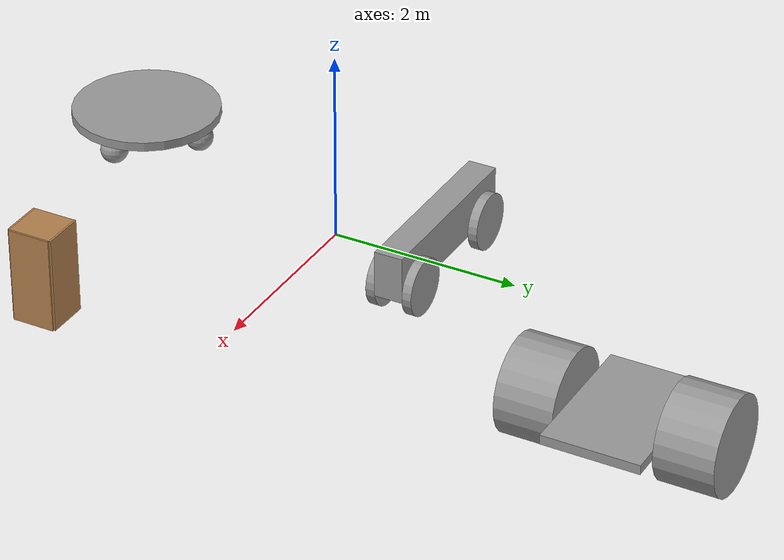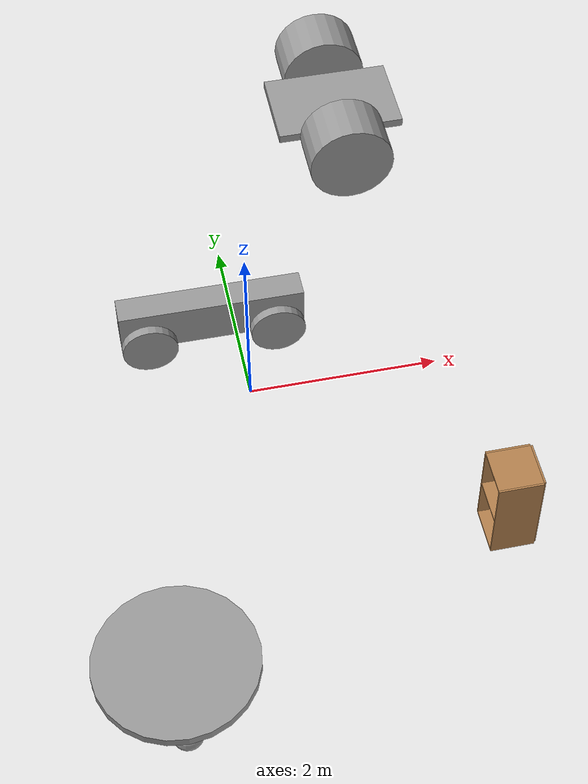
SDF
<?xml version='1.0'?>
<sdf version='1.6'>
  <model name='mymodel'>
    <link name='link_10'>
      <pose frame=''>-0.5984 -3 -0.142857 0 -0 0</pose>
      <inertial>
        <mass>1</mass>
        <inertia>
          <ixx>0.1</ixx>
          <ixy>0</ixy>
          <ixz>0</ixz>
          <iyy>0.1</iyy>
          <iyz>0</iyz>
          <izz>0.1</izz>
        </inertia>
        <pose frame=''>0 0 0 0 -0 0</pose>
      </inertial>
      <gravity>1</gravity>
      <self_collide>0</self_collide>
      <kinematic>0</kinematic>
      <visual name='visual'>
        <pose frame=''>0 0 0 0 -0 0</pose>
        <geometry>
          <sphere>
            <radius>0.15</radius>
          </sphere>
        </geometry>
        <material>
          <lighting>1</lighting>
          <script>
            <uri>file://media/materials/scripts/gazebo.material</uri>
            <name>Gazebo/Grey</name>
          </script>
          <ambient>0.3 0.3 0.3 1</ambient>
          <diffuse>0.7 0.7 0.7 1</diffuse>
          <specular>0.01 0.01 0.01 1</specular>
          <emissive>0 0 0 1</emissive>
          <shader type='vertex'>
            <normal_map>__default__</normal_map>
          </shader>
        </material>
        <cast_shadows>1</cast_shadows>
        <transparency>0</transparency>
      </visual>
      <collision name='collision'>
        <laser_retro>0</laser_retro>
        <max_contacts>10</max_contacts>
        <pose frame=''>0 0 0 0 -0 0</pose>
        <geometry>
          <sphere>
            <radius>0.15</radius>
          </sphere>
        </geometry>
        <surface>
          <friction>
            <ode>
              <mu>1</mu>
              <mu2>1</mu2>
              <fdir1>0 0 0</fdir1>
              <slip1>0</slip1>
              <slip2>0</slip2>
            </ode>
            <torsional>
              <coefficient>1</coefficient>
              <patch_radius>0</patch_radius>
              <surface_radius>0</surface_radius>
              <use_patch_radius>1</use_patch_radius>
              <ode>
                <slip>0</slip>
              </ode>
            </torsional>
          </friction>
          <bounce>
            <restitution_coefficient>0</restitution_coefficient>
            <threshold>1e+06</threshold>
          </bounce>
          <contact>
            <collide_without_contact>0</collide_without_contact>
            <collide_without_contact_bitmask>1</collide_without_contact_bitmask>
            <collide_bitmask>1</collide_bitmask>
            <ode>
              <soft_cfm>0</soft_cfm>
              <soft_erp>0.2</soft_erp>
              <kp>1e+13</kp>
              <kd>1</kd>
              <max_vel>0.01</max_vel>
              <min_depth>0</min_depth>
            </ode>
            <bullet>
              <split_impulse>1</split_impulse>
              <split_impulse_penetration_threshold>-0.01</split_impulse_penetration_threshold>
              <soft_cfm>0</soft_cfm>
              <soft_erp>0.2</soft_erp>
              <kp>1e+13</kp>
              <kd>1</kd>
            </bullet>
          </contact>
        </surface>
      </collision>
    </link>
    <link name='link_10_clone'>
      <pose frame=''>-1.8984 -3 -0.142857 0 -0 0</pose>
      <inertial>
        <mass>1</mass>
        <inertia>
          <ixx>0.1</ixx>
          <ixy>0</ixy>
          <ixz>0</ixz>
          <iyy>0.1</iyy>
          <iyz>0</iyz>
          <izz>0.1</izz>
        </inertia>
        <pose frame=''>0 0 0 0 -0 0</pose>
      </inertial>
      <self_collide>0</self_collide>
      <kinematic>0</kinematic>
      <visual name='visual'>
        <pose frame=''>0 0 0 0 -0 0</pose>
        <geometry>
          <sphere>
            <radius>0.15</radius>
          </sphere>
        </geometry>
        <material>
          <lighting>1</lighting>
          <script>
            <uri>file://media/materials/scripts/gazebo.material</uri>
            <name>Gazebo/Grey</name>
          </script>
          <ambient>0.3 0.3 0.3 1</ambient>
          <diffuse>0.7 0.7 0.7 1</diffuse>
          <specular>0.01 0.01 0.01 1</specular>
          <emissive>0 0 0 1</emissive>
          <shader type='vertex'>
            <normal_map>__default__</normal_map>
          </shader>
        </material>
        <cast_shadows>1</cast_shadows>
        <transparency>0</transparency>
      </visual>
      <collision name='collision'>
        <laser_retro>0</laser_retro>
        <max_contacts>10</max_contacts>
        <pose frame=''>0 0 0 0 -0 0</pose>
        <geometry>
          <sphere>
            <radius>0.15</radius>
          </sphere>
        </geometry>
        <surface>
          <friction>
            <ode>
              <mu>1</mu>
              <mu2>1</mu2>
              <fdir1>0 0 0</fdir1>
              <slip1>0</slip1>
              <slip2>0</slip2>
            </ode>
            <torsional>
              <coefficient>1</coefficient>
              <patch_radius>0</patch_radius>
              <surface_radius>0</surface_radius>
              <use_patch_radius>1</use_patch_radius>
              <ode>
                <slip>0</slip>
              </ode>
            </torsional>
          </friction>
          <bounce>
            <restitution_coefficient>0</restitution_coefficient>
            <threshold>1e+06</threshold>
          </bounce>
          <contact>
            <collide_without_contact>0</collide_without_contact>
            <collide_without_contact_bitmask>1</collide_without_contact_bitmask>
            <collide_bitmask>1</collide_bitmask>
            <ode>
              <soft_cfm>0</soft_cfm>
              <soft_erp>0.2</soft_erp>
              <kp>1e+13</kp>
              <kd>1</kd>
              <max_vel>0.01</max_vel>
              <min_depth>0</min_depth>
            </ode>
            <bullet>
              <split_impulse>1</split_impulse>
              <split_impulse_penetration_threshold>-0.01</split_impulse_penetration_threshold>
              <soft_cfm>0</soft_cfm>
              <soft_erp>0.2</soft_erp>
              <kp>1e+13</kp>
              <kd>1</kd>
            </bullet>
          </contact>
        </surface>
      </collision>
    </link>
    <link name='link_10_clone_clone'>
      <pose frame=''>-1.2484 -2.35 -0.142857 0 -0 0</pose>
      <inertial>
        <mass>1</mass>
        <inertia>
          <ixx>0.1</ixx>
          <ixy>0</ixy>
          <ixz>0</ixz>
          <iyy>0.1</iyy>
          <iyz>0</iyz>
          <izz>0.1</izz>
        </inertia>
        <pose frame=''>0 0 0 0 -0 0</pose>
      </inertial>
      <self_collide>0</self_collide>
      <kinematic>0</kinematic>
      <visual name='visual'>
        <pose frame=''>0 0 0 0 -0 0</pose>
        <geometry>
          <sphere>
            <radius>0.15</radius>
          </sphere>
        </geometry>
        <material>
          <lighting>1</lighting>
          <script>
            <uri>file://media/materials/scripts/gazebo.material</uri>
            <name>Gazebo/Grey</name>
          </script>
          <ambient>0.3 0.3 0.3 1</ambient>
          <diffuse>0.7 0.7 0.7 1</diffuse>
          <specular>0.01 0.01 0.01 1</specular>
          <emissive>0 0 0 1</emissive>
          <shader type='vertex'>
            <normal_map>__default__</normal_map>
          </shader>
        </material>
        <cast_shadows>1</cast_shadows>
        <transparency>0</transparency>
      </visual>
      <collision name='collision'>
        <laser_retro>0</laser_retro>
        <max_contacts>10</max_contacts>
        <pose frame=''>0 0 0 0 -0 0</pose>
        <geometry>
          <sphere>
            <radius>0.15</radius>
          </sphere>
        </geometry>
        <surface>
          <friction>
            <ode>
              <mu>1</mu>
              <mu2>1</mu2>
              <fdir1>0 0 0</fdir1>
              <slip1>0</slip1>
              <slip2>0</slip2>
            </ode>
            <torsional>
              <coefficient>1</coefficient>
              <patch_radius>0</patch_radius>
              <surface_radius>0</surface_radius>
              <use_patch_radius>1</use_patch_radius>
              <ode>
                <slip>0</slip>
              </ode>
            </torsional>
          </friction>
          <bounce>
            <restitution_coefficient>0</restitution_coefficient>
            <threshold>1e+06</threshold>
          </bounce>
          <contact>
            <collide_without_contact>0</collide_without_contact>
            <collide_without_contact_bitmask>1</collide_without_contact_bitmask>
            <collide_bitmask>1</collide_bitmask>
            <ode>
              <soft_cfm>0</soft_cfm>
              <soft_erp>0.2</soft_erp>
              <kp>1e+13</kp>
              <kd>1</kd>
              <max_vel>0.01</max_vel>
              <min_depth>0</min_depth>
            </ode>
            <bullet>
              <split_impulse>1</split_impulse>
              <split_impulse_penetration_threshold>-0.01</split_impulse_penetration_threshold>
              <soft_cfm>0</soft_cfm>
              <soft_erp>0.2</soft_erp>
              <kp>1e+13</kp>
              <kd>1</kd>
            </bullet>
          </contact>
        </surface>
      </collision>
    </link>
    <link name='link_10_clone_clone_0'>
      <pose frame=''>-1.2484 -3.65 -0.142857 0 -0 0</pose>
      <inertial>
        <mass>1</mass>
        <inertia>
          <ixx>0.1</ixx>
          <ixy>0</ixy>
          <ixz>0</ixz>
          <iyy>0.1</iyy>
          <iyz>0</iyz>
          <izz>0.1</izz>
        </inertia>
        <pose frame=''>0 0 0 0 -0 0</pose>
      </inertial>
      <self_collide>0</self_collide>
      <kinematic>0</kinematic>
      <visual name='visual'>
        <pose frame=''>0 0 0 0 -0 0</pose>
        <geometry>
          <sphere>
            <radius>0.15</radius>
          </sphere>
        </geometry>
        <material>
          <lighting>1</lighting>
          <script>
            <uri>file://media/materials/scripts/gazebo.material</uri>
            <name>Gazebo/Grey</name>
          </script>
          <ambient>0.3 0.3 0.3 1</ambient>
          <diffuse>0.7 0.7 0.7 1</diffuse>
          <specular>0.01 0.01 0.01 1</specular>
          <emissive>0 0 0 1</emissive>
          <shader type='vertex'>
            <normal_map>__default__</normal_map>
          </shader>
        </material>
        <cast_shadows>1</cast_shadows>
        <transparency>0</transparency>
      </visual>
      <collision name='collision'>
        <laser_retro>0</laser_retro>
        <max_contacts>10</max_contacts>
        <pose frame=''>0 0 0 0 -0 0</pose>
        <geometry>
          <sphere>
            <radius>0.15</radius>
          </sphere>
        </geometry>
        <surface>
          <friction>
            <ode>
              <mu>1</mu>
              <mu2>1</mu2>
              <fdir1>0 0 0</fdir1>
              <slip1>0</slip1>
              <slip2>0</slip2>
            </ode>
            <torsional>
              <coefficient>1</coefficient>
              <patch_radius>0</patch_radius>
              <surface_radius>0</surface_radius>
              <use_patch_radius>1</use_patch_radius>
              <ode>
                <slip>0</slip>
              </ode>
            </torsional>
          </friction>
          <bounce>
            <restitution_coefficient>0</restitution_coefficient>
            <threshold>1e+06</threshold>
          </bounce>
          <contact>
            <collide_without_contact>0</collide_without_contact>
            <collide_without_contact_bitmask>1</collide_without_contact_bitmask>
            <collide_bitmask>1</collide_bitmask>
            <ode>
              <soft_cfm>0</soft_cfm>
              <soft_erp>0.2</soft_erp>
              <kp>1e+13</kp>
              <kd>1</kd>
              <max_vel>0.01</max_vel>
              <min_depth>0</min_depth>
            </ode>
            <bullet>
              <split_impulse>1</split_impulse>
              <split_impulse_penetration_threshold>-0.01</split_impulse_penetration_threshold>
              <soft_cfm>0</soft_cfm>
              <soft_erp>0.2</soft_erp>
              <kp>1e+13</kp>
              <kd>1</kd>
            </bullet>
          </contact>
        </surface>
      </collision>
    </link>
    <link name='link_12'>
      <pose frame=''>1.7516 4 0.207143 0 -0 0</pose>
      <inertial>
        <mass>1</mass>
        <inertia>
          <ixx>0.166667</ixx>
          <ixy>0</ixy>
          <ixz>0</ixz>
          <iyy>0.166667</iyy>
          <iyz>0</iyz>
          <izz>0.166667</izz>
        </inertia>
        <pose frame=''>0 0 0 0 -0 0</pose>
      </inertial>
      <gravity>1</gravity>
      <self_collide>0</self_collide>
      <kinematic>0</kinematic>
      <visual name='visual'>
        <pose frame=''>0 0 0 0 -0 0</pose>
        <geometry>
          <box>
            <size>1.5 1 0.1</size>
          </box>
        </geometry>
        <material>
          <lighting>1</lighting>
          <script>
            <uri>file://media/materials/scripts/gazebo.material</uri>
            <name>Gazebo/Grey</name>
          </script>
          <ambient>0.3 0.3 0.3 1</ambient>
          <diffuse>0.7 0.7 0.7 1</diffuse>
          <specular>0.01 0.01 0.01 1</specular>
          <emissive>0 0 0 1</emissive>
          <shader type='vertex'>
            <normal_map>__default__</normal_map>
          </shader>
        </material>
        <cast_shadows>1</cast_shadows>
        <transparency>0</transparency>
      </visual>
      <collision name='collision'>
        <laser_retro>0</laser_retro>
        <max_contacts>10</max_contacts>
        <pose frame=''>0 0 0 0 -0 0</pose>
        <geometry>
          <box>
            <size>1.5 1 0.1</size>
          </box>
        </geometry>
        <surface>
          <friction>
            <ode>
              <mu>1</mu>
              <mu2>1</mu2>
              <fdir1>0 0 0</fdir1>
              <slip1>0</slip1>
              <slip2>0</slip2>
            </ode>
            <torsional>
              <coefficient>1</coefficient>
              <patch_radius>0</patch_radius>
              <surface_radius>0</surface_radius>
              <use_patch_radius>1</use_patch_radius>
              <ode>
                <slip>0</slip>
              </ode>
            </torsional>
          </friction>
          <bounce>
            <restitution_coefficient>0</restitution_coefficient>
            <threshold>1e+06</threshold>
          </bounce>
          <contact>
            <collide_without_contact>0</collide_without_contact>
            <collide_without_contact_bitmask>1</collide_without_contact_bitmask>
            <collide_bitmask>1</collide_bitmask>
            <ode>
              <soft_cfm>0</soft_cfm>
              <soft_erp>0.2</soft_erp>
              <kp>1e+13</kp>
              <kd>1</kd>
              <max_vel>0.01</max_vel>
              <min_depth>0</min_depth>
            </ode>
            <bullet>
              <split_impulse>1</split_impulse>
              <split_impulse_penetration_threshold>-0.01</split_impulse_penetration_threshold>
              <soft_cfm>0</soft_cfm>
              <soft_erp>0.2</soft_erp>
              <kp>1e+13</kp>
              <kd>1</kd>
            </bullet>
          </contact>
        </surface>
      </collision>
    </link>
    <link name='link_13'>
      <pose frame=''>1.7516 4.80005 0.207143 1.5707 -0 0</pose>
      <inertial>
        <mass>1</mass>
        <inertia>
          <ixx>0.145833</ixx>
          <ixy>0</ixy>
          <ixz>0</ixz>
          <iyy>0.145833</iyy>
          <iyz>0</iyz>
          <izz>0.125</izz>
        </inertia>
        <pose frame=''>0 0 0 0 -0 0</pose>
      </inertial>
      <gravity>1</gravity>
      <self_collide>0</self_collide>
      <kinematic>0</kinematic>
      <visual name='visual'>
        <pose frame=''>0 0 0 0 -0 0</pose>
        <geometry>
          <cylinder>
            <radius>0.5</radius>
            <length>0.6</length>
          </cylinder>
        </geometry>
        <material>
          <lighting>1</lighting>
          <script>
            <uri>file://media/materials/scripts/gazebo.material</uri>
            <name>Gazebo/Grey</name>
          </script>
          <ambient>0.3 0.3 0.3 1</ambient>
          <diffuse>0.7 0.7 0.7 1</diffuse>
          <specular>0.01 0.01 0.01 1</specular>
          <emissive>0 0 0 1</emissive>
          <shader type='vertex'>
            <normal_map>__default__</normal_map>
          </shader>
        </material>
        <cast_shadows>1</cast_shadows>
        <transparency>0</transparency>
      </visual>
      <collision name='collision'>
        <laser_retro>0</laser_retro>
        <max_contacts>10</max_contacts>
        <pose frame=''>0 0 0 0 -0 0</pose>
        <geometry>
          <cylinder>
            <radius>0.5</radius>
            <length>0.6</length>
          </cylinder>
        </geometry>
        <surface>
          <friction>
            <ode>
              <mu>1</mu>
              <mu2>1</mu2>
              <fdir1>0 0 0</fdir1>
              <slip1>0</slip1>
              <slip2>0</slip2>
            </ode>
            <torsional>
              <coefficient>1</coefficient>
              <patch_radius>0</patch_radius>
              <surface_radius>0</surface_radius>
              <use_patch_radius>1</use_patch_radius>
              <ode>
                <slip>0</slip>
              </ode>
            </torsional>
          </friction>
          <bounce>
            <restitution_coefficient>0</restitution_coefficient>
            <threshold>1e+06</threshold>
          </bounce>
          <contact>
            <collide_without_contact>0</collide_without_contact>
            <collide_without_contact_bitmask>1</collide_without_contact_bitmask>
            <collide_bitmask>1</collide_bitmask>
            <ode>
              <soft_cfm>0</soft_cfm>
              <soft_erp>0.2</soft_erp>
              <kp>1e+13</kp>
              <kd>1</kd>
              <max_vel>0.01</max_vel>
              <min_depth>0</min_depth>
            </ode>
            <bullet>
              <split_impulse>1</split_impulse>
              <split_impulse_penetration_threshold>-0.01</split_impulse_penetration_threshold>
              <soft_cfm>0</soft_cfm>
              <soft_erp>0.2</soft_erp>
              <kp>1e+13</kp>
              <kd>1</kd>
            </bullet>
          </contact>
        </surface>
      </collision>
    </link>
    <link name='link_13_clone'>
      <pose frame=''>1.7516 3.19995 0.207143 1.5707 -0 0</pose>
      <inertial>
        <mass>1</mass>
        <inertia>
          <ixx>0.145833</ixx>
          <ixy>0</ixy>
          <ixz>0</ixz>
          <iyy>0.145833</iyy>
          <iyz>0</iyz>
          <izz>0.125</izz>
        </inertia>
        <pose frame=''>0 0 0 0 -0 0</pose>
      </inertial>
      <self_collide>0</self_collide>
      <kinematic>0</kinematic>
      <visual name='visual'>
        <pose frame=''>0 0 0 0 -0 0</pose>
        <geometry>
          <cylinder>
            <radius>0.5</radius>
            <length>0.6</length>
          </cylinder>
        </geometry>
        <material>
          <lighting>1</lighting>
          <script>
            <uri>file://media/materials/scripts/gazebo.material</uri>
            <name>Gazebo/Grey</name>
          </script>
          <ambient>0.3 0.3 0.3 1</ambient>
          <diffuse>0.7 0.7 0.7 1</diffuse>
          <specular>0.01 0.01 0.01 1</specular>
          <emissive>0 0 0 1</emissive>
          <shader type='vertex'>
            <normal_map>__default__</normal_map>
          </shader>
        </material>
        <cast_shadows>1</cast_shadows>
        <transparency>0</transparency>
      </visual>
      <collision name='collision'>
        <laser_retro>0</laser_retro>
        <max_contacts>10</max_contacts>
        <pose frame=''>0 0 0 0 -0 0</pose>
        <geometry>
          <cylinder>
            <radius>0.5</radius>
            <length>0.6</length>
          </cylinder>
        </geometry>
        <surface>
          <friction>
            <ode>
              <mu>1</mu>
              <mu2>1</mu2>
              <fdir1>0 0 0</fdir1>
              <slip1>0</slip1>
              <slip2>0</slip2>
            </ode>
            <torsional>
              <coefficient>1</coefficient>
              <patch_radius>0</patch_radius>
              <surface_radius>0</surface_radius>
              <use_patch_radius>1</use_patch_radius>
              <ode>
                <slip>0</slip>
              </ode>
            </torsional>
          </friction>
          <bounce>
            <restitution_coefficient>0</restitution_coefficient>
            <threshold>1e+06</threshold>
          </bounce>
          <contact>
            <collide_without_contact>0</collide_without_contact>
            <collide_without_contact_bitmask>1</collide_without_contact_bitmask>
            <collide_bitmask>1</collide_bitmask>
            <ode>
              <soft_cfm>0</soft_cfm>
              <soft_erp>0.2</soft_erp>
              <kp>1e+13</kp>
              <kd>1</kd>
              <max_vel>0.01</max_vel>
              <min_depth>0</min_depth>
            </ode>
            <bullet>
              <split_impulse>1</split_impulse>
              <split_impulse_penetration_threshold>-0.01</split_impulse_penetration_threshold>
              <soft_cfm>0</soft_cfm>
              <soft_erp>0.2</soft_erp>
              <kp>1e+13</kp>
              <kd>1</kd>
            </bullet>
          </contact>
        </surface>
      </collision>
    </link>
    <link name='link_6'>
      <pose frame=''>-0.2484 1 0.207143 0 -0 0</pose>
      <inertial>
        <mass>1</mass>
        <inertia>
          <ixx>0.166667</ixx>
          <ixy>0</ixy>
          <ixz>0</ixz>
          <iyy>0.166667</iyy>
          <iyz>0</iyz>
          <izz>0.166667</izz>
        </inertia>
        <pose frame=''>0 0 0 0 -0 0</pose>
      </inertial>
      <gravity>1</gravity>
      <self_collide>0</self_collide>
      <kinematic>0</kinematic>
      <visual name='visual'>
        <pose frame=''>0 0 0 0 -0 0</pose>
        <geometry>
          <box>
            <size>2 0.3 0.5</size>
          </box>
        </geometry>
        <material>
          <lighting>1</lighting>
          <script>
            <uri>file://media/materials/scripts/gazebo.material</uri>
            <name>Gazebo/Grey</name>
          </script>
          <ambient>0.3 0.3 0.3 1</ambient>
          <diffuse>0.7 0.7 0.7 1</diffuse>
          <specular>0.01 0.01 0.01 1</specular>
          <emissive>0 0 0 1</emissive>
          <shader type='vertex'>
            <normal_map>__default__</normal_map>
          </shader>
        </material>
        <cast_shadows>1</cast_shadows>
        <transparency>0</transparency>
      </visual>
      <collision name='collision'>
        <laser_retro>0</laser_retro>
        <max_contacts>10</max_contacts>
        <pose frame=''>0 0 0 0 -0 0</pose>
        <geometry>
          <box>
            <size>2 0.3 0.5</size>
          </box>
        </geometry>
        <surface>
          <friction>
            <ode>
              <mu>1</mu>
              <mu2>1</mu2>
              <fdir1>0 0 0</fdir1>
              <slip1>0</slip1>
              <slip2>0</slip2>
            </ode>
            <torsional>
              <coefficient>1</coefficient>
              <patch_radius>0</patch_radius>
              <surface_radius>0</surface_radius>
              <use_patch_radius>1</use_patch_radius>
              <ode>
                <slip>0</slip>
              </ode>
            </torsional>
          </friction>
          <bounce>
            <restitution_coefficient>0</restitution_coefficient>
            <threshold>1e+06</threshold>
          </bounce>
          <contact>
            <collide_without_contact>0</collide_without_contact>
            <collide_without_contact_bitmask>1</collide_without_contact_bitmask>
            <collide_bitmask>1</collide_bitmask>
            <ode>
              <soft_cfm>0</soft_cfm>
              <soft_erp>0.2</soft_erp>
              <kp>1e+13</kp>
              <kd>1</kd>
              <max_vel>0.01</max_vel>
              <min_depth>0</min_depth>
            </ode>
            <bullet>
              <split_impulse>1</split_impulse>
              <split_impulse_penetration_threshold>-0.01</split_impulse_penetration_threshold>
              <soft_cfm>0</soft_cfm>
              <soft_erp>0.2</soft_erp>
              <kp>1e+13</kp>
              <kd>1</kd>
            </bullet>
          </contact>
        </surface>
      </collision>
    </link>
    <link name='link_8'>
      <pose frame=''>-0.9484 0.799971 0.007143 1.5707 -0 0</pose>
      <inertial>
        <mass>1</mass>
        <inertia>
          <ixx>0.145833</ixx>
          <ixy>0</ixy>
          <ixz>0</ixz>
          <iyy>0.145833</iyy>
          <iyz>0</iyz>
          <izz>0.125</izz>
        </inertia>
        <pose frame=''>0 0 0 0 -0 0</pose>
      </inertial>
      <gravity>1</gravity>
      <self_collide>0</self_collide>
      <kinematic>0</kinematic>
      <visual name='visual'>
        <pose frame=''>0 0 0 0 -0 0</pose>
        <geometry>
          <cylinder>
            <radius>0.3</radius>
            <length>0.1</length>
          </cylinder>
        </geometry>
        <material>
          <lighting>1</lighting>
          <script>
            <uri>file://media/materials/scripts/gazebo.material</uri>
            <name>Gazebo/Grey</name>
          </script>
          <ambient>0.3 0.3 0.3 1</ambient>
          <diffuse>0.7 0.7 0.7 1</diffuse>
          <specular>0.01 0.01 0.01 1</specular>
          <emissive>0 0 0 1</emissive>
          <shader type='vertex'>
            <normal_map>__default__</normal_map>
          </shader>
        </material>
        <cast_shadows>1</cast_shadows>
        <transparency>0</transparency>
      </visual>
      <collision name='collision'>
        <laser_retro>0</laser_retro>
        <max_contacts>10</max_contacts>
        <pose frame=''>0 0 0 0 -0 0</pose>
        <geometry>
          <cylinder>
            <radius>0.3</radius>
            <length>0.1</length>
          </cylinder>
        </geometry>
        <surface>
          <friction>
            <ode>
              <mu>1</mu>
              <mu2>1</mu2>
              <fdir1>0 0 0</fdir1>
              <slip1>0</slip1>
              <slip2>0</slip2>
            </ode>
            <torsional>
              <coefficient>1</coefficient>
              <patch_radius>0</patch_radius>
              <surface_radius>0</surface_radius>
              <use_patch_radius>1</use_patch_radius>
              <ode>
                <slip>0</slip>
              </ode>
            </torsional>
          </friction>
          <bounce>
            <restitution_coefficient>0</restitution_coefficient>
            <threshold>1e+06</threshold>
          </bounce>
          <contact>
            <collide_without_contact>0</collide_without_contact>
            <collide_without_contact_bitmask>1</collide_without_contact_bitmask>
            <collide_bitmask>1</collide_bitmask>
            <ode>
              <soft_cfm>0</soft_cfm>
              <soft_erp>0.2</soft_erp>
              <kp>1e+13</kp>
              <kd>1</kd>
              <max_vel>0.01</max_vel>
              <min_depth>0</min_depth>
            </ode>
            <bullet>
              <split_impulse>1</split_impulse>
              <split_impulse_penetration_threshold>-0.01</split_impulse_penetration_threshold>
              <soft_cfm>0</soft_cfm>
              <soft_erp>0.2</soft_erp>
              <kp>1e+13</kp>
              <kd>1</kd>
            </bullet>
          </contact>
        </surface>
      </collision>
    </link>
    <link name='link_8_clone'>
      <pose frame=''>0.4516 0.799971 0.007143 1.5707 -0 0</pose>
      <inertial>
        <mass>1</mass>
        <inertia>
          <ixx>0.145833</ixx>
          <ixy>0</ixy>
          <ixz>0</ixz>
          <iyy>0.145833</iyy>
          <iyz>0</iyz>
          <izz>0.125</izz>
        </inertia>
        <pose frame=''>0 0 0 0 -0 0</pose>
      </inertial>
      <self_collide>0</self_collide>
      <kinematic>0</kinematic>
      <visual name='visual'>
        <pose frame=''>0 0 0 0 -0 0</pose>
        <geometry>
          <cylinder>
            <radius>0.3</radius>
            <length>0.1</length>
          </cylinder>
        </geometry>
        <material>
          <lighting>1</lighting>
          <script>
            <uri>file://media/materials/scripts/gazebo.material</uri>
            <name>Gazebo/Grey</name>
          </script>
          <ambient>0.3 0.3 0.3 1</ambient>
          <diffuse>0.7 0.7 0.7 1</diffuse>
          <specular>0.01 0.01 0.01 1</specular>
          <emissive>0 0 0 1</emissive>
          <shader type='vertex'>
            <normal_map>__default__</normal_map>
          </shader>
        </material>
        <cast_shadows>1</cast_shadows>
        <transparency>0</transparency>
      </visual>
      <collision name='collision'>
        <laser_retro>0</laser_retro>
        <max_contacts>10</max_contacts>
        <pose frame=''>0 0 0 0 -0 0</pose>
        <geometry>
          <cylinder>
            <radius>0.3</radius>
            <length>0.1</length>
          </cylinder>
        </geometry>
        <surface>
          <friction>
            <ode>
              <mu>1</mu>
              <mu2>1</mu2>
              <fdir1>0 0 0</fdir1>
              <slip1>0</slip1>
              <slip2>0</slip2>
            </ode>
            <torsional>
              <coefficient>1</coefficient>
              <patch_radius>0</patch_radius>
              <surface_radius>0</surface_radius>
              <use_patch_radius>1</use_patch_radius>
              <ode>
                <slip>0</slip>
              </ode>
            </torsional>
          </friction>
          <bounce>
            <restitution_coefficient>0</restitution_coefficient>
            <threshold>1e+06</threshold>
          </bounce>
          <contact>
            <collide_without_contact>0</collide_without_contact>
            <collide_without_contact_bitmask>1</collide_without_contact_bitmask>
            <collide_bitmask>1</collide_bitmask>
            <ode>
              <soft_cfm>0</soft_cfm>
              <soft_erp>0.2</soft_erp>
              <kp>1e+13</kp>
              <kd>1</kd>
              <max_vel>0.01</max_vel>
              <min_depth>0</min_depth>
            </ode>
            <bullet>
              <split_impulse>1</split_impulse>
              <split_impulse_penetration_threshold>-0.01</split_impulse_penetration_threshold>
              <soft_cfm>0</soft_cfm>
              <soft_erp>0.2</soft_erp>
              <kp>1e+13</kp>
              <kd>1</kd>
            </bullet>
          </contact>
        </surface>
      </collision>
    </link>
    <link name='link_8_clone_0'>
      <pose frame=''>-0.9484 1.20003 0.007143 1.5707 -0 0</pose>
      <inertial>
        <mass>1</mass>
        <inertia>
          <ixx>0.145833</ixx>
          <ixy>0</ixy>
          <ixz>0</ixz>
          <iyy>0.145833</iyy>
          <iyz>0</iyz>
          <izz>0.125</izz>
        </inertia>
        <pose frame=''>0 0 0 0 -0 0</pose>
      </inertial>
      <self_collide>0</self_collide>
      <kinematic>0</kinematic>
      <visual name='visual'>
        <pose frame=''>0 0 0 0 -0 0</pose>
        <geometry>
          <cylinder>
            <radius>0.3</radius>
            <length>0.1</length>
          </cylinder>
        </geometry>
        <material>
          <lighting>1</lighting>
          <script>
            <uri>file://media/materials/scripts/gazebo.material</uri>
            <name>Gazebo/Grey</name>
          </script>
          <ambient>0.3 0.3 0.3 1</ambient>
          <diffuse>0.7 0.7 0.7 1</diffuse>
          <specular>0.01 0.01 0.01 1</specular>
          <emissive>0 0 0 1</emissive>
          <shader type='vertex'>
            <normal_map>__default__</normal_map>
          </shader>
        </material>
        <cast_shadows>1</cast_shadows>
        <transparency>0</transparency>
      </visual>
      <collision name='collision'>
        <laser_retro>0</laser_retro>
        <max_contacts>10</max_contacts>
        <pose frame=''>0 0 0 0 -0 0</pose>
        <geometry>
          <cylinder>
            <radius>0.3</radius>
            <length>0.1</length>
          </cylinder>
        </geometry>
        <surface>
          <friction>
            <ode>
              <mu>1</mu>
              <mu2>1</mu2>
              <fdir1>0 0 0</fdir1>
              <slip1>0</slip1>
              <slip2>0</slip2>
            </ode>
            <torsional>
              <coefficient>1</coefficient>
              <patch_radius>0</patch_radius>
              <surface_radius>0</surface_radius>
              <use_patch_radius>1</use_patch_radius>
              <ode>
                <slip>0</slip>
              </ode>
            </torsional>
          </friction>
          <bounce>
            <restitution_coefficient>0</restitution_coefficient>
            <threshold>1e+06</threshold>
          </bounce>
          <contact>
            <collide_without_contact>0</collide_without_contact>
            <collide_without_contact_bitmask>1</collide_without_contact_bitmask>
            <collide_bitmask>1</collide_bitmask>
            <ode>
              <soft_cfm>0</soft_cfm>
              <soft_erp>0.2</soft_erp>
              <kp>1e+13</kp>
              <kd>1</kd>
              <max_vel>0.01</max_vel>
              <min_depth>0</min_depth>
            </ode>
            <bullet>
              <split_impulse>1</split_impulse>
              <split_impulse_penetration_threshold>-0.01</split_impulse_penetration_threshold>
              <soft_cfm>0</soft_cfm>
              <soft_erp>0.2</soft_erp>
              <kp>1e+13</kp>
              <kd>1</kd>
            </bullet>
          </contact>
        </surface>
      </collision>
    </link>
    <link name='link_8_clone_1'>
      <pose frame=''>0.4516 1.20003 0.007143 1.5707 -0 0</pose>
      <inertial>
        <mass>1</mass>
        <inertia>
          <ixx>0.145833</ixx>
          <ixy>0</ixy>
          <ixz>0</ixz>
          <iyy>0.145833</iyy>
          <iyz>0</iyz>
          <izz>0.125</izz>
        </inertia>
        <pose frame=''>0 0 0 0 -0 0</pose>
      </inertial>
      <self_collide>0</self_collide>
      <kinematic>0</kinematic>
      <visual name='visual'>
        <pose frame=''>0 0 0 0 -0 0</pose>
        <geometry>
          <cylinder>
            <radius>0.3</radius>
            <length>0.1</length>
          </cylinder>
        </geometry>
        <material>
          <lighting>1</lighting>
          <script>
            <uri>file://media/materials/scripts/gazebo.material</uri>
            <name>Gazebo/Grey</name>
          </script>
          <ambient>0.3 0.3 0.3 1</ambient>
          <diffuse>0.7 0.7 0.7 1</diffuse>
          <specular>0.01 0.01 0.01 1</specular>
          <emissive>0 0 0 1</emissive>
          <shader type='vertex'>
            <normal_map>__default__</normal_map>
          </shader>
        </material>
        <cast_shadows>1</cast_shadows>
        <transparency>0</transparency>
      </visual>
      <collision name='collision'>
        <laser_retro>0</laser_retro>
        <max_contacts>10</max_contacts>
        <pose frame=''>0 0 0 0 -0 0</pose>
        <geometry>
          <cylinder>
            <radius>0.3</radius>
            <length>0.1</length>
          </cylinder>
        </geometry>
        <surface>
          <friction>
            <ode>
              <mu>1</mu>
              <mu2>1</mu2>
              <fdir1>0 0 0</fdir1>
              <slip1>0</slip1>
              <slip2>0</slip2>
            </ode>
            <torsional>
              <coefficient>1</coefficient>
              <patch_radius>0</patch_radius>
              <surface_radius>0</surface_radius>
              <use_patch_radius>1</use_patch_radius>
              <ode>
                <slip>0</slip>
              </ode>
            </torsional>
          </friction>
          <bounce>
            <restitution_coefficient>0</restitution_coefficient>
            <threshold>1e+06</threshold>
          </bounce>
          <contact>
            <collide_without_contact>0</collide_without_contact>
            <collide_without_contact_bitmask>1</collide_without_contact_bitmask>
            <collide_bitmask>1</collide_bitmask>
            <ode>
              <soft_cfm>0</soft_cfm>
              <soft_erp>0.2</soft_erp>
              <kp>1e+13</kp>
              <kd>1</kd>
              <max_vel>0.01</max_vel>
              <min_depth>0</min_depth>
            </ode>
            <bullet>
              <split_impulse>1</split_impulse>
              <split_impulse_penetration_threshold>-0.01</split_impulse_penetration_threshold>
              <soft_cfm>0</soft_cfm>
              <soft_erp>0.2</soft_erp>
              <kp>1e+13</kp>
              <kd>1</kd>
            </bullet>
          </contact>
        </surface>
      </collision>
    </link>
    <link name='link_9'>
      <pose frame=''>-1.2484 -3 0.007143 0 -0 0</pose>
      <inertial>
        <mass>1</mass>
        <inertia>
          <ixx>0.145833</ixx>
          <ixy>0</ixy>
          <ixz>0</ixz>
          <iyy>0.145833</iyy>
          <iyz>0</iyz>
          <izz>0.125</izz>
        </inertia>
        <pose frame=''>0 0 0 0 -0 0</pose>
      </inertial>
      <gravity>1</gravity>
      <self_collide>0</self_collide>
      <kinematic>0</kinematic>
      <visual name='visual'>
        <pose frame=''>0 0 0 0 -0 0</pose>
        <geometry>
          <cylinder>
            <radius>0.8</radius>
            <length>0.1</length>
          </cylinder>
        </geometry>
        <material>
          <lighting>1</lighting>
          <script>
            <uri>file://media/materials/scripts/gazebo.material</uri>
            <name>Gazebo/Grey</name>
          </script>
          <ambient>0.3 0.3 0.3 1</ambient>
          <diffuse>0.7 0.7 0.7 1</diffuse>
          <specular>0.01 0.01 0.01 1</specular>
          <emissive>0 0 0 1</emissive>
          <shader type='vertex'>
            <normal_map>__default__</normal_map>
          </shader>
        </material>
        <cast_shadows>1</cast_shadows>
        <transparency>0</transparency>
      </visual>
      <collision name='collision'>
        <laser_retro>0</laser_retro>
        <max_contacts>10</max_contacts>
        <pose frame=''>0 0 0 0 -0 0</pose>
        <geometry>
          <cylinder>
            <radius>0.8</radius>
            <length>0.1</length>
          </cylinder>
        </geometry>
        <surface>
          <friction>
            <ode>
              <mu>1</mu>
              <mu2>1</mu2>
              <fdir1>0 0 0</fdir1>
              <slip1>0</slip1>
              <slip2>0</slip2>
            </ode>
            <torsional>
              <coefficient>1</coefficient>
              <patch_radius>0</patch_radius>
              <surface_radius>0</surface_radius>
              <use_patch_radius>1</use_patch_radius>
              <ode>
                <slip>0</slip>
              </ode>
            </torsional>
          </friction>
          <bounce>
            <restitution_coefficient>0</restitution_coefficient>
            <threshold>1e+06</threshold>
          </bounce>
          <contact>
            <collide_without_contact>0</collide_without_contact>
            <collide_without_contact_bitmask>1</collide_without_contact_bitmask>
            <collide_bitmask>1</collide_bitmask>
            <ode>
              <soft_cfm>0</soft_cfm>
              <soft_erp>0.2</soft_erp>
              <kp>1e+13</kp>
              <kd>1</kd>
              <max_vel>0.01</max_vel>
              <min_depth>0</min_depth>
            </ode>
            <bullet>
              <split_impulse>1</split_impulse>
              <split_impulse_penetration_threshold>-0.01</split_impulse_penetration_threshold>
              <soft_cfm>0</soft_cfm>
              <soft_erp>0.2</soft_erp>
              <kp>1e+13</kp>
              <kd>1</kd>
            </bullet>
          </contact>
        </surface>
      </collision>
    </link>
    <model name='cabinet'>
      <static>1</static>
      <link name='cabinet_bottom_plate'>
        <inertial>
          <pose frame=''>0 0 -1 0 -0 0</pose>
          <inertia>
            <ixx>2.05</ixx>
            <ixy>0</ixy>
            <ixz>0</ixz>
            <iyy>2.05</iyy>
            <iyz>0</iyz>
            <izz>2.05</izz>
          </inertia>
          <mass>25</mass>
        </inertial>
        <collision name='cabinet_bottom_plate_geom'>
          <pose frame=''>0 0 0.01 0 -0 0</pose>
          <geometry>
            <box>
              <size>0.45 0.45 0.02</size>
            </box>
          </geometry>
        </collision>
        <visual name='cabinet_bottom_plate_geom_visual'>
          <pose frame=''>0 0 0.01 0 -0 0</pose>
          <geometry>
            <box>
              <size>0.45 0.45 0.02</size>
            </box>
          </geometry>
          <material>
            <script>
              <uri>file://media/materials/scripts/gazebo.material</uri>
              <name>Gazebo/Wood</name>
            </script>
          </material>
        </visual>
        <collision name='cabinet_bottom_plate_geom_cabinet_back_plate'>
          <pose frame=''>0.235 0 0.51 0 -0 0</pose>
          <geometry>
            <box>
              <size>0.02 0.45 1.02</size>
            </box>
          </geometry>
        </collision>
        <visual name='cabinet_bottom_plate_geom_cabinet_back_plate_visual'>
          <pose frame=''>0.235 0 0.51 0 -0 0</pose>
          <geometry>
            <box>
              <size>0.02 0.45 1.02</size>
            </box>
          </geometry>
          <material>
            <script>
              <uri>file://media/materials/scripts/gazebo.material</uri>
              <name>Gazebo/Wood</name>
            </script>
          </material>
        </visual>
        <collision name='cabinet_bottom_plate_geom_cabinet_left_plate'>
          <pose frame=''>0 0.235 0.51 0 -0 0</pose>
          <geometry>
            <box>
              <size>0.45 0.02 1.02</size>
            </box>
          </geometry>
        </collision>
        <visual name='cabinet_bottom_plate_geom_cabinet_left_plate_visual'>
          <pose frame=''>0 0.235 0.51 0 -0 0</pose>
          <geometry>
            <box>
              <size>0.45 0.02 1.02</size>
            </box>
          </geometry>
          <material>
            <script>
              <uri>file://media/materials/scripts/gazebo.material</uri>
              <name>Gazebo/Wood</name>
            </script>
          </material>
        </visual>
        <collision name='cabinet_bottom_plate_geom_cabinet_middle_plate'>
          <pose frame=''>0 0 0.51 0 -0 0</pose>
          <geometry>
            <box>
              <size>0.45 0.45 0.02</size>
            </box>
          </geometry>
        </collision>
        <visual name='cabinet_bottom_plate_geom_cabinet_middle_plate_visual'>
          <pose frame=''>0 0 0.51 0 -0 0</pose>
          <geometry>
            <box>
              <size>0.45 0.45 0.02</size>
            </box>
          </geometry>
          <material>
            <script>
              <uri>file://media/materials/scripts/gazebo.material</uri>
              <name>Gazebo/Wood</name>
            </script>
          </material>
        </visual>
        <collision name='cabinet_bottom_plate_geom_cabinet_right_plate'>
          <pose frame=''>0 -0.235 0.51 0 -0 0</pose>
          <geometry>
            <box>
              <size>0.45 0.02 1.02</size>
            </box>
          </geometry>
        </collision>
        <visual name='cabinet_bottom_plate_geom_cabinet_right_plate_visual'>
          <pose frame=''>0 -0.235 0.51 0 -0 0</pose>
          <geometry>
            <box>
              <size>0.45 0.02 1.02</size>
            </box>
          </geometry>
          <material>
            <script>
              <uri>file://media/materials/scripts/gazebo.material</uri>
              <name>Gazebo/Wood</name>
            </script>
          </material>
        </visual>
        <collision name='cabinet_bottom_plate_geom_cabinet_top_plate'>
          <pose frame=''>0 0 1.01 0 -0 0</pose>
          <geometry>
            <box>
              <size>0.45 0.45 0.02</size>
            </box>
          </geometry>
        </collision>
        <visual name='cabinet_bottom_plate_geom_cabinet_top_plate_visual'>
          <pose frame=''>0 0 1.01 0 -0 0</pose>
          <geometry>
            <box>
              <size>0.45 0.45 0.02</size>
            </box>
          </geometry>
          <material>
            <script>
              <uri>file://media/materials/scripts/gazebo.material</uri>
              <name>Gazebo/Wood</name>
            </script>
          </material>
        </visual>
      </link>
      <pose frame=''>2.22918 -2 -0.292857 0 -0 0</pose>
    </model>
    <joint name='link_12_JOINT_10' type='revolute'>
      <parent>link_12</parent>
      <child>link_13_clone</child>
      <pose frame=''>0 0 0 0 -0 0</pose>
      <axis>
        <xyz>1 0 0</xyz>
        <use_parent_model_frame>0</use_parent_model_frame>
        <limit>
          <lower>-1.79769e+308</lower>
          <upper>1.79769e+308</upper>
          <effort>-1</effort>
          <velocity>-1</velocity>
        </limit>
        <dynamics>
          <spring_reference>0</spring_reference>
          <spring_stiffness>0</spring_stiffness>
          <damping>0</damping>
        </dynamics>
      </axis>
      <physics>
        <ode>
          <limit>
            <cfm>0</cfm>
            <erp>0.2</erp>
          </limit>
          <suspension>
            <cfm>0</cfm>
            <erp>0.2</erp>
          </suspension>
        </ode>
      </physics>
    </joint>
    <joint name='link_12_JOINT_11' type='revolute'>
      <parent>link_12</parent>
      <child>link_13</child>
      <pose frame=''>0 0 0 0 -0 0</pose>
      <axis>
        <xyz>1 0 0</xyz>
        <use_parent_model_frame>0</use_parent_model_frame>
        <limit>
          <lower>-1.79769e+308</lower>
          <upper>1.79769e+308</upper>
          <effort>-1</effort>
          <velocity>-1</velocity>
        </limit>
        <dynamics>
          <spring_reference>0</spring_reference>
          <spring_stiffness>0</spring_stiffness>
          <damping>0</damping>
        </dynamics>
      </axis>
      <physics>
        <ode>
          <limit>
            <cfm>0</cfm>
            <erp>0.2</erp>
          </limit>
          <suspension>
            <cfm>0</cfm>
            <erp>0.2</erp>
          </suspension>
        </ode>
      </physics>
    </joint>
    <joint name='link_6_JOINT_0' type='revolute'>
      <parent>link_6</parent>
      <child>link_8</child>
      <pose frame=''>0 0 0 0 -0 0</pose>
      <axis>
        <xyz>1 0 0</xyz>
        <use_parent_model_frame>0</use_parent_model_frame>
        <limit>
          <lower>-1.79769e+308</lower>
          <upper>1.79769e+308</upper>
          <effort>-1</effort>
          <velocity>-1</velocity>
        </limit>
        <dynamics>
          <spring_reference>0</spring_reference>
          <spring_stiffness>0</spring_stiffness>
          <damping>0</damping>
        </dynamics>
      </axis>
      <physics>
        <ode>
          <limit>
            <cfm>0</cfm>
            <erp>0.2</erp>
          </limit>
          <suspension>
            <cfm>0</cfm>
            <erp>0.2</erp>
          </suspension>
        </ode>
      </physics>
    </joint>
    <joint name='link_6_JOINT_1' type='revolute'>
      <parent>link_6</parent>
      <child>link_8_clone</child>
      <pose frame=''>0 0 0 0 -0 0</pose>
      <axis>
        <xyz>1 0 0</xyz>
        <use_parent_model_frame>0</use_parent_model_frame>
        <limit>
          <lower>-1.79769e+308</lower>
          <upper>1.79769e+308</upper>
          <effort>-1</effort>
          <velocity>-1</velocity>
        </limit>
        <dynamics>
          <spring_reference>0</spring_reference>
          <spring_stiffness>0</spring_stiffness>
          <damping>0</damping>
        </dynamics>
      </axis>
      <physics>
        <ode>
          <limit>
            <cfm>0</cfm>
            <erp>0.2</erp>
          </limit>
          <suspension>
            <cfm>0</cfm>
            <erp>0.2</erp>
          </suspension>
        </ode>
      </physics>
    </joint>
    <joint name='link_6_JOINT_2' type='revolute'>
      <parent>link_6</parent>
      <child>link_8_clone_0</child>
      <pose frame=''>0 0 0 0 -0 0</pose>
      <axis>
        <xyz>1 0 0</xyz>
        <use_parent_model_frame>0</use_parent_model_frame>
        <limit>
          <lower>-1.79769e+308</lower>
          <upper>1.79769e+308</upper>
          <effort>-1</effort>
          <velocity>-1</velocity>
        </limit>
        <dynamics>
          <spring_reference>0</spring_reference>
          <spring_stiffness>0</spring_stiffness>
          <damping>0</damping>
        </dynamics>
      </axis>
      <physics>
        <ode>
          <limit>
            <cfm>0</cfm>
            <erp>0.2</erp>
          </limit>
          <suspension>
            <cfm>0</cfm>
            <erp>0.2</erp>
          </suspension>
        </ode>
      </physics>
    </joint>
    <joint name='link_6_JOINT_3' type='revolute'>
      <parent>link_6</parent>
      <child>link_8_clone_1</child>
      <pose frame=''>0 0 0 0 -0 0</pose>
      <axis>
        <xyz>1 0 0</xyz>
        <use_parent_model_frame>0</use_parent_model_frame>
        <limit>
          <lower>-1.79769e+308</lower>
          <upper>1.79769e+308</upper>
          <effort>-1</effort>
          <velocity>-1</velocity>
        </limit>
        <dynamics>
          <spring_reference>0</spring_reference>
          <spring_stiffness>0</spring_stiffness>
          <damping>0</damping>
        </dynamics>
      </axis>
      <physics>
        <ode>
          <limit>
            <cfm>0</cfm>
            <erp>0.2</erp>
          </limit>
          <suspension>
            <cfm>0</cfm>
            <erp>0.2</erp>
          </suspension>
        </ode>
      </physics>
    </joint>
    <joint name='link_9_JOINT_6' type='revolute'>
      <parent>link_9</parent>
      <child>link_10_clone</child>
      <pose frame=''>0 0 0 0 -0 0</pose>
      <axis>
        <xyz>1 0 0</xyz>
        <use_parent_model_frame>0</use_parent_model_frame>
        <limit>
          <lower>-1.79769e+308</lower>
          <upper>1.79769e+308</upper>
          <effort>-1</effort>
          <velocity>-1</velocity>
        </limit>
        <dynamics>
          <spring_reference>0</spring_reference>
          <spring_stiffness>0</spring_stiffness>
          <damping>0</damping>
        </dynamics>
      </axis>
      <physics>
        <ode>
          <limit>
            <cfm>0</cfm>
            <erp>0.2</erp>
          </limit>
          <suspension>
            <cfm>0</cfm>
            <erp>0.2</erp>
          </suspension>
        </ode>
      </physics>
    </joint>
    <joint name='link_9_JOINT_7' type='revolute'>
      <parent>link_9</parent>
      <child>link_10</child>
      <pose frame=''>0 0 0 0 -0 0</pose>
      <axis>
        <xyz>1 0 0</xyz>
        <use_parent_model_frame>0</use_parent_model_frame>
        <limit>
          <lower>-1.79769e+308</lower>
          <upper>1.79769e+308</upper>
          <effort>-1</effort>
          <velocity>-1</velocity>
        </limit>
        <dynamics>
          <spring_reference>0</spring_reference>
          <spring_stiffness>0</spring_stiffness>
          <damping>0</damping>
        </dynamics>
      </axis>
      <physics>
        <ode>
          <limit>
            <cfm>0</cfm>
            <erp>0.2</erp>
          </limit>
          <suspension>
            <cfm>0</cfm>
            <erp>0.2</erp>
          </suspension>
        </ode>
      </physics>
    </joint>
    <joint name='link_9_JOINT_8' type='revolute'>
      <parent>link_9</parent>
      <child>link_10_clone_clone</child>
      <pose frame=''>0 0 0 0 -0 0</pose>
      <axis>
        <xyz>1 0 0</xyz>
        <use_parent_model_frame>0</use_parent_model_frame>
        <limit>
          <lower>-1.79769e+308</lower>
          <upper>1.79769e+308</upper>
          <effort>-1</effort>
          <velocity>-1</velocity>
        </limit>
        <dynamics>
          <spring_reference>0</spring_reference>
          <spring_stiffness>0</spring_stiffness>
          <damping>0</damping>
        </dynamics>
      </axis>
      <physics>
        <ode>
          <limit>
            <cfm>0</cfm>
            <erp>0.2</erp>
          </limit>
          <suspension>
            <cfm>0</cfm>
            <erp>0.2</erp>
          </suspension>
        </ode>
      </physics>
    </joint>
    <joint name='link_9_JOINT_9' type='revolute'>
      <parent>link_9</parent>
      <child>link_10_clone_clone_0</child>
      <pose frame=''>0 0 0 0 -0 0</pose>
      <axis>
        <xyz>1 0 0</xyz>
        <use_parent_model_frame>0</use_parent_model_frame>
        <limit>
          <lower>-1.79769e+308</lower>
          <upper>1.79769e+308</upper>
          <effort>-1</effort>
          <velocity>-1</velocity>
        </limit>
        <dynamics>
          <spring_reference>0</spring_reference>
          <spring_stiffness>0</spring_stiffness>
          <damping>0</damping>
        </dynamics>
      </axis>
      <physics>
        <ode>
          <limit>
            <cfm>0</cfm>
            <erp>0.2</erp>
          </limit>
          <suspension>
            <cfm>0</cfm>
            <erp>0.2</erp>
          </suspension>
        </ode>
      </physics>
    </joint>
    <static>0</static>
    <allow_auto_disable>1</allow_auto_disable>
  </model>
</sdf>
